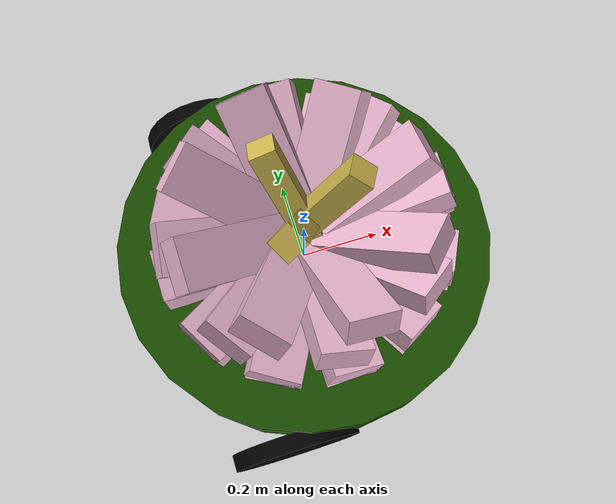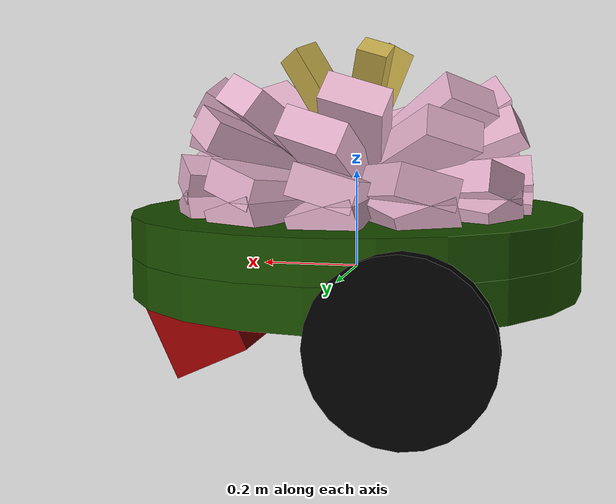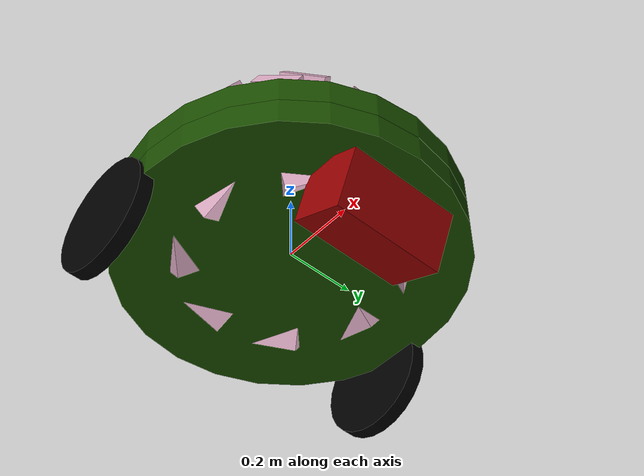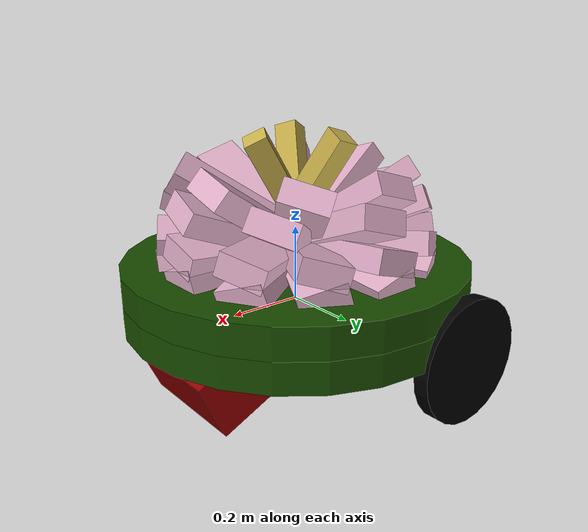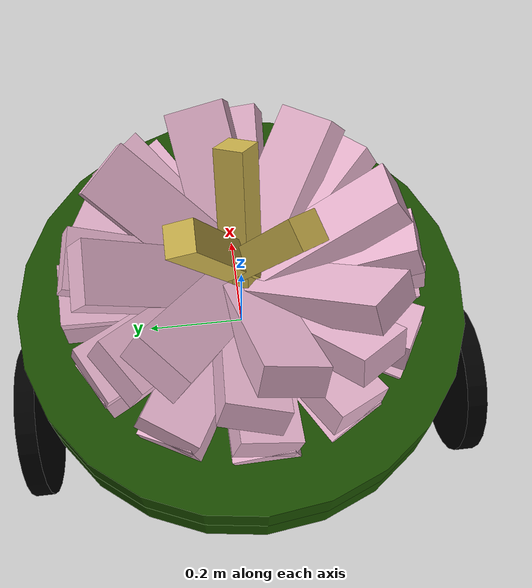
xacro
<?xml version="1.0"?>

<robot name="kuvshinka" xmlns:xacro="http://ros.org/wiki/xacro">
  <!-- Добавление файла с подключениями различных плагинов Gazebo -->
  <xacro:include filename="kuvshinka.gazebo.xacro" />

  <!-- Числовые константы (просто упрощаем себе жизнь) -->
  <xacro:property name="base_width" value="0.46"/>
  <xacro:property name="base_length" value="0.08"/>

  <xacro:property name="wheel_radius" value="0.16"/>
  <xacro:property name="wheel_width" value="0.04"/>
  <xacro:property name="wheel_ygap" value="0.22"/>
  <xacro:property name="wheel_zoff" value="0.08"/>
  <xacro:property name="wheel_xoff" value="0.16"/>

  <xacro:property name="caster_xoff" value="0.30"/>
  <xacro:property name="caster_size" value="0.16"/>

  <xacro:property name="petal_size" value="0.12"/>

  <xacro:property name="test_maxwidth" value="2.10"/>
  <xacro:property name="test_maxheight" value="2.50"/>

  <!-- Здесь описываем "материалы" (из какого цвета будут детаели) -->
  <material name="greeen">
    <color rgba="0.1 0.3 0 1"/>
  </material>
  <material name="black">
    <color rgba="0 0 0 1"/>
  </material>
  <material name="pinkish">
    <color rgba="0.9 0.7 0.8 1"/>
  </material>
  <material name="yellowish">
    <color rgba="0.8 0.7 0.3 1"/>
  </material>
  <material name="red">
    <color rgba="0.6 0 0 1"/>
  </material>

  <!-- Задаём макросы xacro -->
  <xacro:macro name="box_inertia" params="m w h d">
    <inertial>
      <origin xyz="0 0 0" rpy="${pi/2} 0 ${pi/2}"/>
      <mass value="${m}"/>
      <inertia ixx="${(m/12) * (h*h + d*d)}" ixy="0.0" ixz="0.0" iyy="${(m/12) * (w*w + d*d)}" iyz="0.0" izz="${(m/12) * (w*w + h*h)}"/>
    </inertial>
  </xacro:macro>

  <xacro:macro name="cylinder_inertia" params="m r h">
    <inertial>
      <origin xyz="0 0 0" rpy="${pi/2} 0 0" />
      <mass value="${m}"/>
      <inertia ixx="${(m/12) * (3*r*r + h*h)}" ixy = "0" ixz = "0" iyy="${(m/12) * (3*r*r + h*h)}" iyz = "0" izz="${(m/2) * (r*r)}"/>
    </inertial>
  </xacro:macro>

  <xacro:macro name="sphere_inertia" params="m r">
    <inertial>
      <mass value="${m}"/>
      <inertia ixx="${(2/5) * m * (r*r)}" ixy="0.0" ixz="0.0" iyy="${(2/5) * m * (r*r)}" iyz="0.0" izz="${(2/5) * m * (r*r)}"/>
    </inertial>
  </xacro:macro>

  <!-- Базовая фигура, к ней должно крепиться всё остальное -->
  <link name="base_link">
    <visual>
      <geometry>
        <cylinder length="${base_length}" radius="${base_width}"/>
      </geometry>
      <material name="greeen" />
    </visual>

    <collision>
      <geometry>
        <cylinder length="${base_length}" radius="${base_width}"/>
      </geometry>
    </collision>

    <xacro:cylinder_inertia m="15" r="${base_width}" h="${base_length}"/>
  </link>

  <link name="base_top">
    <visual>
      <geometry>
        <cylinder length="${base_length}" radius="${base_width}"/>
      </geometry>
      <material name="greeen" />
    </visual>

    <collision>
      <geometry>
        <cylinder length="${base_length}" radius="${base_width}"/>
      </geometry>
    </collision>

    <xacro:cylinder_inertia m="15" r="${base_width}" h="${base_length}"/>
  </link>

  <joint name="base_top_joint" type="fixed">
    <parent link="base_link"/>
    <child link="base_top"/>
    <origin xyz="0 0 ${base_length}" rpy="0 0 0"/>
  </joint>

  <!-- Колёса, задаются сразу несколько колёс через макрос -->
  <xacro:macro name="wheel" params="prefix x_reflect y_reflect">
    <link name="${prefix}_link">
      <visual>
        <origin xyz="0 0 ${base_length/4}" rpy="${pi/2} 0 0"/>
        <geometry>
            <cylinder radius="${wheel_radius}" length="${wheel_width}"/>
        </geometry>
        <material name="black" />
      </visual>

      <collision>
        <origin xyz="0 0 ${base_length/4}" rpy="${pi/2} 0 0"/>
        <geometry>
          <cylinder radius="${wheel_radius}" length="${wheel_width}"/>
        </geometry>
      </collision>

      <xacro:cylinder_inertia m="0.5" r="${wheel_radius}" h="${wheel_width}"/>
    </link>

    <joint name="${prefix}_joint" type="continuous">
      <parent link="base_link"/>
      <child link="${prefix}_link"/>
      <origin xyz="${x_reflect*wheel_xoff} ${y_reflect*(base_width/2+wheel_ygap)} ${-wheel_zoff}" rpy="0 0 0"/>
      <axis xyz="0 1 0"/>
    </joint>
  </xacro:macro>

  <xacro:wheel prefix="wheel_left" x_reflect="-1" y_reflect="1" />
  <xacro:wheel prefix="wheel_right" x_reflect="-1" y_reflect="-1" />

  <!-- Сфера (уже не совсем) спереди снизу, называется кастер -->
  <link name="caster">
    <visual>
      <geometry>
        <box size="${caster_size} ${caster_size*2} ${caster_size}"/>
      </geometry>
      <material name="red" />
    </visual>

    <collision>
      <origin xyz="0 0 0" rpy="0 0 0"/>
      <geometry>
        <box size="${caster_size} ${caster_size*2} ${caster_size}"/>
      </geometry>
    </collision>

    <xacro:sphere_inertia m="0.5" r="${(wheel_radius+wheel_zoff-(base_width/4))}"/>
  </link>

  <joint name="caster_joint" type="fixed">
    <parent link="base_link"/>
    <child link="caster"/>
    <origin xyz="${caster_xoff} 0.0 ${wheel_zoff*-1.4}" rpy="0 2 0"/>
  </joint>

  <!-- Ну и просто для красоты добавим кувшинке лепестки наружние... -->
  <xacro:macro name="petal_outer" params="skew petal_no petal_total">
    <link name="petal_outer_${skew}_${petal_no}">
      <visual>
        <geometry>
          <box size="${petal_size} ${petal_size*6} ${petal_size/2}"/>
        </geometry>
        <material name="pinkish" />
      </visual>

      <collision>
        <origin xyz="0 0 0" rpy="0 0 0"/>
        <geometry>
          <box size="${petal_size} ${petal_size*6} ${petal_size/2}"/>
        </geometry>
      </collision>

      <xacro:box_inertia m="0.2" w="${petal_size}" h="${petal_size*6}" d="${petal_size/2}"/>
    </link>

    <joint name="petal_outer_${skew}_${petal_no}_joint" type="fixed">
      <parent link="base_top"/>
      <child link="petal_outer_${skew}_${petal_no}"/>
      <origin xyz="0 0 ${base_length}" rpy="${15.8 + skew} 6 ${(skew*2 + petal_no / petal_total) * pi*2}"/>
    </joint>
  </xacro:macro>

  <xacro:petal_outer skew="0.0" petal_no="1" petal_total="12" />
  <xacro:petal_outer skew="0.0" petal_no="2" petal_total="12" />
  <xacro:petal_outer skew="0.0" petal_no="3" petal_total="12" />
  <xacro:petal_outer skew="0.0" petal_no="4" petal_total="12" />
  <xacro:petal_outer skew="0.0" petal_no="5" petal_total="12" />
  <xacro:petal_outer skew="0.0" petal_no="6" petal_total="12" />
  <xacro:petal_outer skew="0.0" petal_no="7" petal_total="12" />
  <xacro:petal_outer skew="0.0" petal_no="8" petal_total="12" />
  <xacro:petal_outer skew="0.0" petal_no="9" petal_total="12" />
  <xacro:petal_outer skew="0.0" petal_no="10" petal_total="12" />
  <xacro:petal_outer skew="0.0" petal_no="11" petal_total="12" />
  <xacro:petal_outer skew="0.0" petal_no="12" petal_total="12" />

  <xacro:petal_outer skew="0.3" petal_no="1" petal_total="8" />
  <xacro:petal_outer skew="0.3" petal_no="2" petal_total="8" />
  <xacro:petal_outer skew="0.3" petal_no="3" petal_total="8" />
  <xacro:petal_outer skew="0.3" petal_no="4" petal_total="8" />
  <xacro:petal_outer skew="0.3" petal_no="5" petal_total="8" />
  <xacro:petal_outer skew="0.3" petal_no="6" petal_total="8" />
  <xacro:petal_outer skew="0.3" petal_no="7" petal_total="8" />
  <xacro:petal_outer skew="0.3" petal_no="8" petal_total="8" />

  <xacro:petal_outer skew="0.5" petal_no="1" petal_total="8" />
  <xacro:petal_outer skew="0.5" petal_no="2" petal_total="8" />
  <xacro:petal_outer skew="0.5" petal_no="3" petal_total="8" />
  <xacro:petal_outer skew="0.5" petal_no="4" petal_total="8" />
  <xacro:petal_outer skew="0.5" petal_no="5" petal_total="8" />
  <xacro:petal_outer skew="0.5" petal_no="6" petal_total="8" />
  <xacro:petal_outer skew="0.5" petal_no="7" petal_total="8" />
  <xacro:petal_outer skew="0.5" petal_no="8" petal_total="8" />

  <!-- ...и лепестки внутренние -->
  <xacro:macro name="petal_inner" params="petal_no petal_total">
    <link name="petal_inner_${petal_no}">
      <visual>
        <geometry>
          <box size="${petal_size/2} ${petal_size*4} ${petal_size/2}"/>
        </geometry>
        <material name="yellowish" />
      </visual>

      <collision>
        <origin xyz="0 0 0" rpy="0 0 0"/>
        <geometry>
          <box size="${petal_size/2} ${petal_size*4} ${petal_size/2}"/>
        </geometry>
      </collision>

      <xacro:box_inertia m="0.2" w="${petal_size/2}" h="${petal_size*4}" d="${petal_size/2}"/>
    </link>

    <joint name="petal_inner_${petal_no}_joint" type="fixed">
      <parent link="base_top"/>
      <child link="petal_inner_${petal_no}"/>
      <origin xyz="0 0 ${base_length*2}" rpy="16.8 6 ${(petal_no / petal_total) * pi*2}"/>
    </joint>
  </xacro:macro>

  <xacro:petal_inner petal_no="1" petal_total="3" />
  <xacro:petal_inner petal_no="2" petal_total="3" />
  <xacro:petal_inner petal_no="3" petal_total="3" />
</robot>
